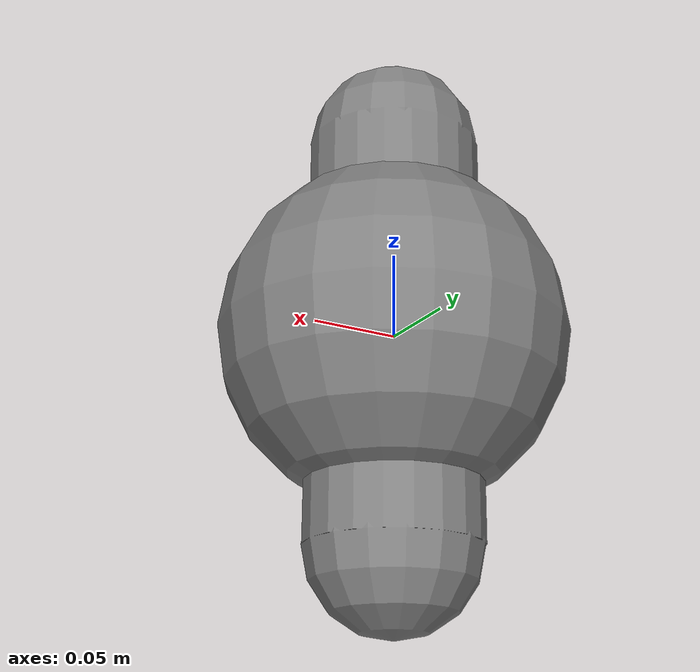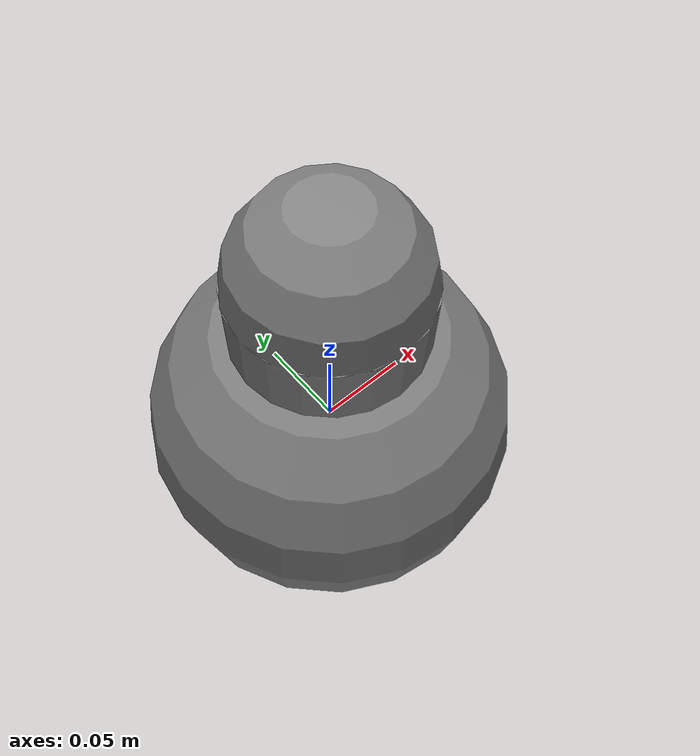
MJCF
<mujoco model="sweep_sphere_capsule_mg">
  <worldbody>
    <body name="a"><freejoint/><geom name="ga" type="sphere" size="0.1" margin="0.02" gap="0.03" mass="1"/></body>
    <body name="b"><freejoint/><geom name="gb" type="capsule" size="0.05 0.12" margin="0.02" gap="0.03" mass="1"/></body>
  </worldbody>
</mujoco>
